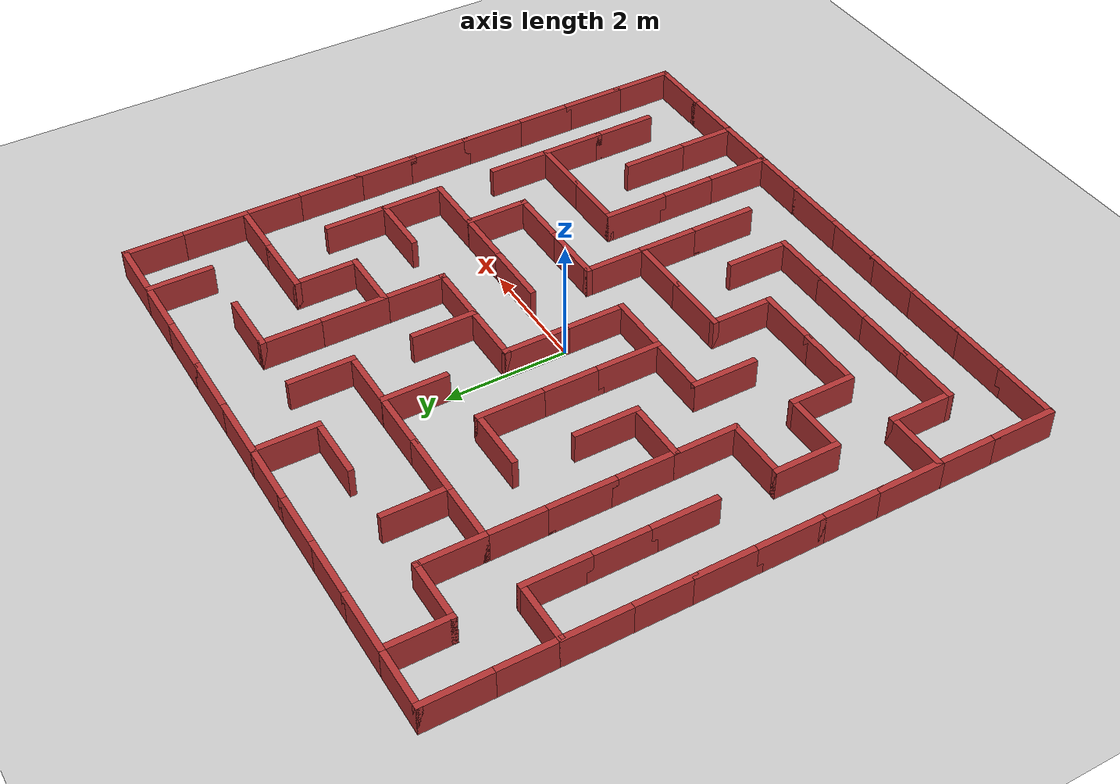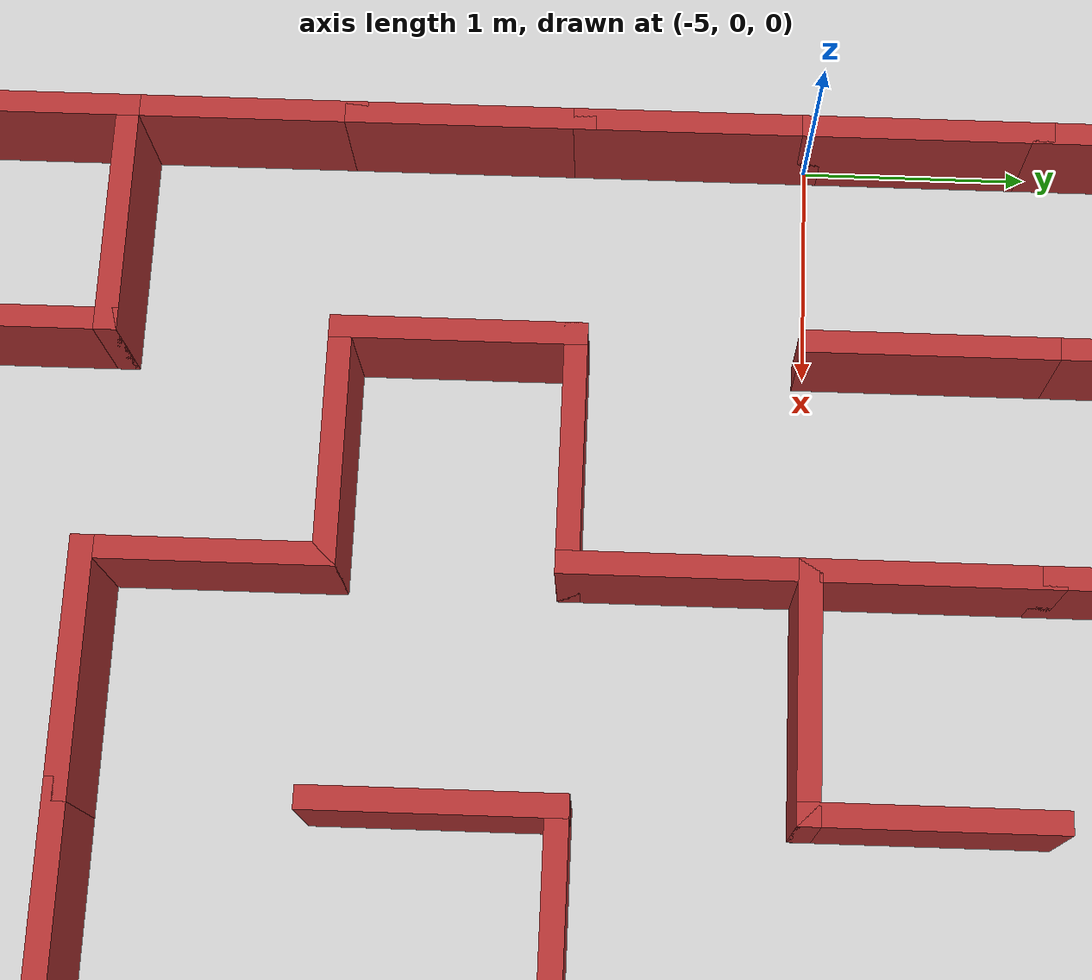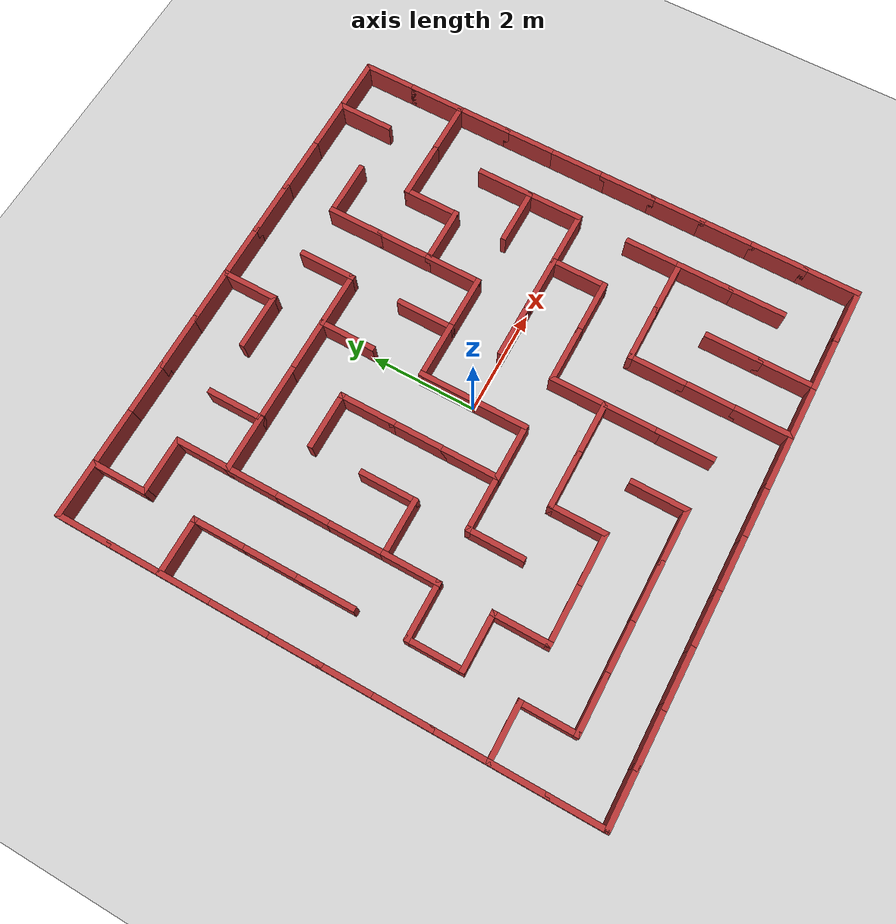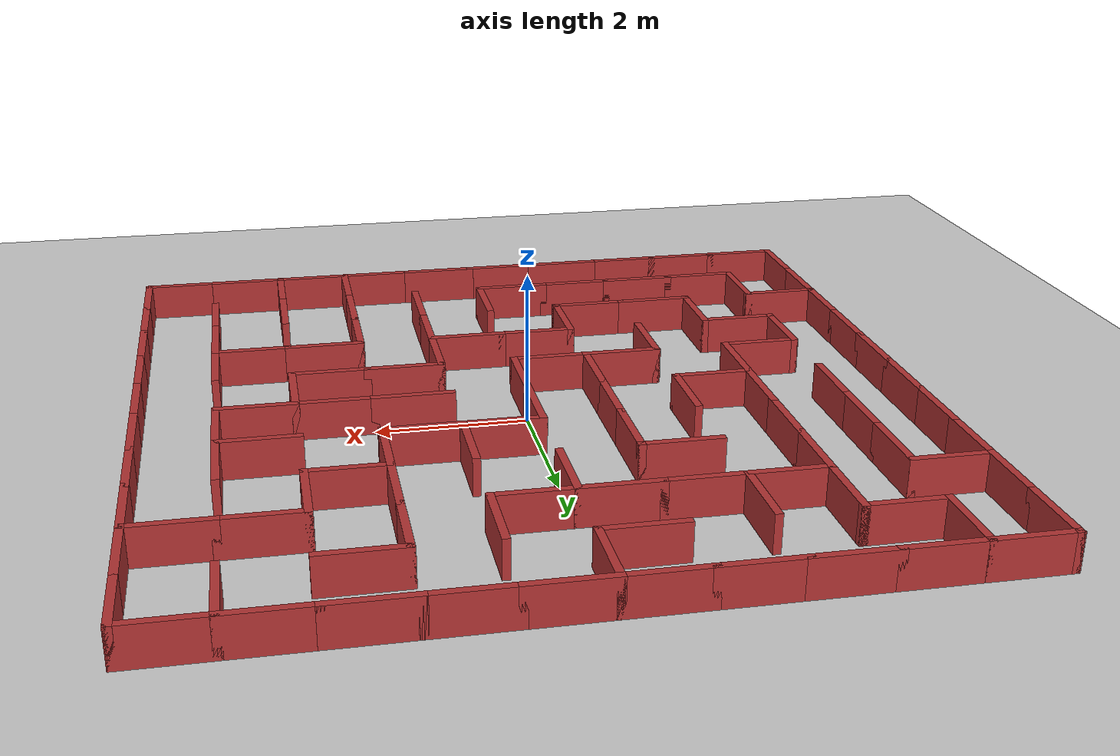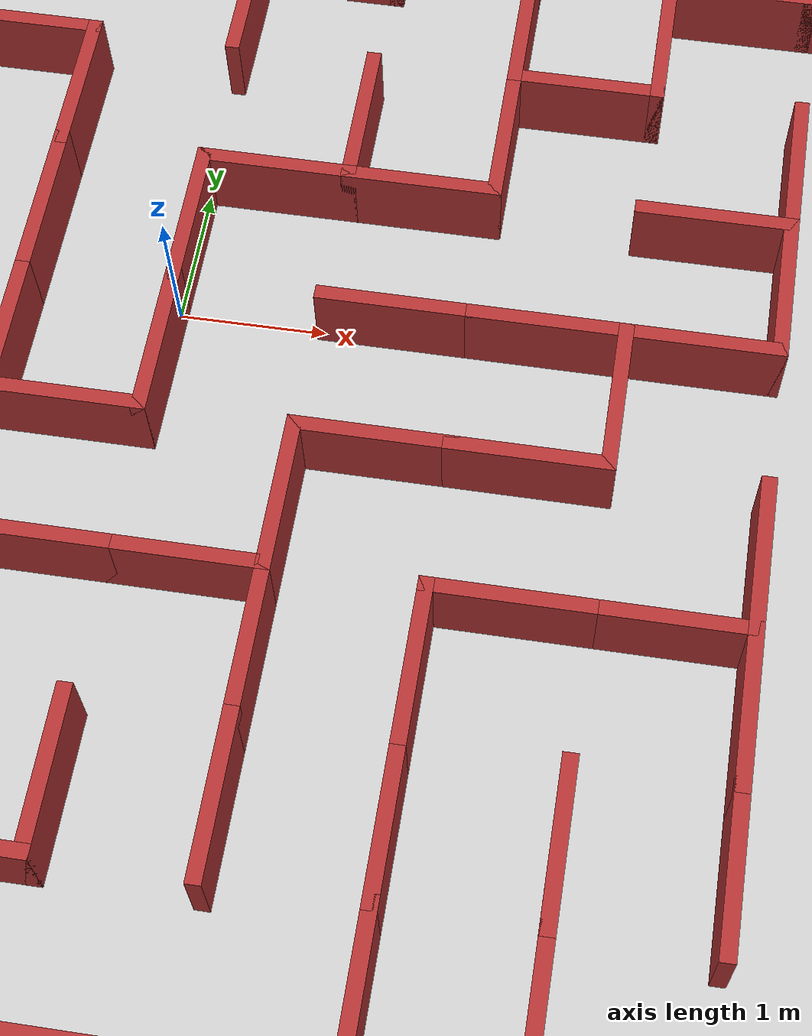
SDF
<?xml version="1.0" ?>
<sdf version="1.9">
  <world name="maze_world">
    <!-- Gazebo Harmonic system plugins -->
    <plugin filename="gz-sim-physics-system" name="gz::sim::systems::Physics"/>
    <plugin filename="gz-sim-sensors-system" name="gz::sim::systems::Sensors">
    <render_engine>ogre2</render_engine>
    </plugin>
    <plugin filename="gz-sim-scene-broadcaster-system" name="gz::sim::systems::SceneBroadcaster"/>
    <plugin filename="gz-sim-user-commands-system" name="gz::sim::systems::UserCommands"/>
    <plugin filename="gz-sim-imu-system" name="gz::sim::systems::Imu"/>

    <light name="sun" type="directional">
      <cast_shadows>1</cast_shadows>
      <pose>0 0 10 0 -0 0</pose>
      <diffuse>0.8 0.8 0.8 1</diffuse>
      <specular>0.1 0.1 0.1 1</specular>
      <direction>-0.5 0.5 -1</direction>
    </light>

    <model name="ground_plane">
      <static>1</static>
      <link name="link">
        <collision name="collision">
          <geometry><plane><normal>0 0 1</normal><size>100 100</size></plane></geometry>
        </collision>
        <visual name="visual">
          <geometry><plane><normal>0 0 1</normal><size>100 100</size></plane></geometry>
          <material><ambient>0.8 0.8 0.8 1</ambient></material>
        </visual>
      </link>
    </model>

    <model name="laberinto">
      <static>1</static>
      <link name="vwall_0">
        <pose>-5.0 4.5 0.25 0 0 0</pose>
        <collision name="vwall_0_collision">
          <geometry><box><size>0.1 1.1 0.5</size></box></geometry>
        </collision>
        <visual name="vwall_0_visual">
          <geometry><box><size>0.1 1.1 0.5</size></box></geometry>
          <material><ambient>0.7 0.2 0.2 1</ambient><diffuse>0.7 0.2 0.2 1</diffuse></material>
        </visual>
      </link>
      <link name="vwall_1">
        <pose>-4.0 4.5 0.25 0 0 0</pose>
        <collision name="vwall_1_collision">
          <geometry><box><size>0.1 1.1 0.5</size></box></geometry>
        </collision>
        <visual name="vwall_1_visual">
          <geometry><box><size>0.1 1.1 0.5</size></box></geometry>
          <material><ambient>0.7 0.2 0.2 1</ambient><diffuse>0.7 0.2 0.2 1</diffuse></material>
        </visual>
      </link>
      <link name="vwall_2">
        <pose>0.0 4.5 0.25 0 0 0</pose>
        <collision name="vwall_2_collision">
          <geometry><box><size>0.1 1.1 0.5</size></box></geometry>
        </collision>
        <visual name="vwall_2_visual">
          <geometry><box><size>0.1 1.1 0.5</size></box></geometry>
          <material><ambient>0.7 0.2 0.2 1</ambient><diffuse>0.7 0.2 0.2 1</diffuse></material>
        </visual>
      </link>
      <link name="vwall_3">
        <pose>4.0 4.5 0.25 0 0 0</pose>
        <collision name="vwall_3_collision">
          <geometry><box><size>0.1 1.1 0.5</size></box></geometry>
        </collision>
        <visual name="vwall_3_visual">
          <geometry><box><size>0.1 1.1 0.5</size></box></geometry>
          <material><ambient>0.7 0.2 0.2 1</ambient><diffuse>0.7 0.2 0.2 1</diffuse></material>
        </visual>
      </link>
      <link name="vwall_4">
        <pose>5.0 4.5 0.25 0 0 0</pose>
        <collision name="vwall_4_collision">
          <geometry><box><size>0.1 1.1 0.5</size></box></geometry>
        </collision>
        <visual name="vwall_4_visual">
          <geometry><box><size>0.1 1.1 0.5</size></box></geometry>
          <material><ambient>0.7 0.2 0.2 1</ambient><diffuse>0.7 0.2 0.2 1</diffuse></material>
        </visual>
      </link>
      <link name="vwall_5">
        <pose>-5.0 3.5 0.25 0 0 0</pose>
        <collision name="vwall_5_collision">
          <geometry><box><size>0.1 1.1 0.5</size></box></geometry>
        </collision>
        <visual name="vwall_5_visual">
          <geometry><box><size>0.1 1.1 0.5</size></box></geometry>
          <material><ambient>0.7 0.2 0.2 1</ambient><diffuse>0.7 0.2 0.2 1</diffuse></material>
        </visual>
      </link>
      <link name="vwall_6">
        <pose>-3.0 3.5 0.25 0 0 0</pose>
        <collision name="vwall_6_collision">
          <geometry><box><size>0.1 1.1 0.5</size></box></geometry>
        </collision>
        <visual name="vwall_6_visual">
          <geometry><box><size>0.1 1.1 0.5</size></box></geometry>
          <material><ambient>0.7 0.2 0.2 1</ambient><diffuse>0.7 0.2 0.2 1</diffuse></material>
        </visual>
      </link>
      <link name="vwall_7">
        <pose>-2.0 3.5 0.25 0 0 0</pose>
        <collision name="vwall_7_collision">
          <geometry><box><size>0.1 1.1 0.5</size></box></geometry>
        </collision>
        <visual name="vwall_7_visual">
          <geometry><box><size>0.1 1.1 0.5</size></box></geometry>
          <material><ambient>0.7 0.2 0.2 1</ambient><diffuse>0.7 0.2 0.2 1</diffuse></material>
        </visual>
      </link>
      <link name="vwall_8">
        <pose>1.0 3.5 0.25 0 0 0</pose>
        <collision name="vwall_8_collision">
          <geometry><box><size>0.1 1.1 0.5</size></box></geometry>
        </collision>
        <visual name="vwall_8_visual">
          <geometry><box><size>0.1 1.1 0.5</size></box></geometry>
          <material><ambient>0.7 0.2 0.2 1</ambient><diffuse>0.7 0.2 0.2 1</diffuse></material>
        </visual>
      </link>
      <link name="vwall_9">
        <pose>2.0 3.5 0.25 0 0 0</pose>
        <collision name="vwall_9_collision">
          <geometry><box><size>0.1 1.1 0.5</size></box></geometry>
        </collision>
        <visual name="vwall_9_visual">
          <geometry><box><size>0.1 1.1 0.5</size></box></geometry>
          <material><ambient>0.7 0.2 0.2 1</ambient><diffuse>0.7 0.2 0.2 1</diffuse></material>
        </visual>
      </link>
      <link name="vwall_10">
        <pose>5.0 3.5 0.25 0 0 0</pose>
        <collision name="vwall_10_collision">
          <geometry><box><size>0.1 1.1 0.5</size></box></geometry>
        </collision>
        <visual name="vwall_10_visual">
          <geometry><box><size>0.1 1.1 0.5</size></box></geometry>
          <material><ambient>0.7 0.2 0.2 1</ambient><diffuse>0.7 0.2 0.2 1</diffuse></material>
        </visual>
      </link>
      <link name="vwall_11">
        <pose>-5.0 2.5 0.25 0 0 0</pose>
        <collision name="vwall_11_collision">
          <geometry><box><size>0.1 1.1 0.5</size></box></geometry>
        </collision>
        <visual name="vwall_11_visual">
          <geometry><box><size>0.1 1.1 0.5</size></box></geometry>
          <material><ambient>0.7 0.2 0.2 1</ambient><diffuse>0.7 0.2 0.2 1</diffuse></material>
        </visual>
      </link>
      <link name="vwall_12">
        <pose>-4.0 2.5 0.25 0 0 0</pose>
        <collision name="vwall_12_collision">
          <geometry><box><size>0.1 1.1 0.5</size></box></geometry>
        </collision>
        <visual name="vwall_12_visual">
          <geometry><box><size>0.1 1.1 0.5</size></box></geometry>
          <material><ambient>0.7 0.2 0.2 1</ambient><diffuse>0.7 0.2 0.2 1</diffuse></material>
        </visual>
      </link>
      <link name="vwall_13">
        <pose>-3.0 2.5 0.25 0 0 0</pose>
        <collision name="vwall_13_collision">
          <geometry><box><size>0.1 1.1 0.5</size></box></geometry>
        </collision>
        <visual name="vwall_13_visual">
          <geometry><box><size>0.1 1.1 0.5</size></box></geometry>
          <material><ambient>0.7 0.2 0.2 1</ambient><diffuse>0.7 0.2 0.2 1</diffuse></material>
        </visual>
      </link>
      <link name="vwall_14">
        <pose>0.0 2.5 0.25 0 0 0</pose>
        <collision name="vwall_14_collision">
          <geometry><box><size>0.1 1.1 0.5</size></box></geometry>
        </collision>
        <visual name="vwall_14_visual">
          <geometry><box><size>0.1 1.1 0.5</size></box></geometry>
          <material><ambient>0.7 0.2 0.2 1</ambient><diffuse>0.7 0.2 0.2 1</diffuse></material>
        </visual>
      </link>
      <link name="vwall_15">
        <pose>2.0 2.5 0.25 0 0 0</pose>
        <collision name="vwall_15_collision">
          <geometry><box><size>0.1 1.1 0.5</size></box></geometry>
        </collision>
        <visual name="vwall_15_visual">
          <geometry><box><size>0.1 1.1 0.5</size></box></geometry>
          <material><ambient>0.7 0.2 0.2 1</ambient><diffuse>0.7 0.2 0.2 1</diffuse></material>
        </visual>
      </link>
      <link name="vwall_16">
        <pose>3.0 2.5 0.25 0 0 0</pose>
        <collision name="vwall_16_collision">
          <geometry><box><size>0.1 1.1 0.5</size></box></geometry>
        </collision>
        <visual name="vwall_16_visual">
          <geometry><box><size>0.1 1.1 0.5</size></box></geometry>
          <material><ambient>0.7 0.2 0.2 1</ambient><diffuse>0.7 0.2 0.2 1</diffuse></material>
        </visual>
      </link>
      <link name="vwall_17">
        <pose>5.0 2.5 0.25 0 0 0</pose>
        <collision name="vwall_17_collision">
          <geometry><box><size>0.1 1.1 0.5</size></box></geometry>
        </collision>
        <visual name="vwall_17_visual">
          <geometry><box><size>0.1 1.1 0.5</size></box></geometry>
          <material><ambient>0.7 0.2 0.2 1</ambient><diffuse>0.7 0.2 0.2 1</diffuse></material>
        </visual>
      </link>
      <link name="vwall_18">
        <pose>-5.0 1.5 0.25 0 0 0</pose>
        <collision name="vwall_18_collision">
          <geometry><box><size>0.1 1.1 0.5</size></box></geometry>
        </collision>
        <visual name="vwall_18_visual">
          <geometry><box><size>0.1 1.1 0.5</size></box></geometry>
          <material><ambient>0.7 0.2 0.2 1</ambient><diffuse>0.7 0.2 0.2 1</diffuse></material>
        </visual>
      </link>
      <link name="vwall_19">
        <pose>-4.0 1.5 0.25 0 0 0</pose>
        <collision name="vwall_19_collision">
          <geometry><box><size>0.1 1.1 0.5</size></box></geometry>
        </collision>
        <visual name="vwall_19_visual">
          <geometry><box><size>0.1 1.1 0.5</size></box></geometry>
          <material><ambient>0.7 0.2 0.2 1</ambient><diffuse>0.7 0.2 0.2 1</diffuse></material>
        </visual>
      </link>
      <link name="vwall_20">
        <pose>-3.0 1.5 0.25 0 0 0</pose>
        <collision name="vwall_20_collision">
          <geometry><box><size>0.1 1.1 0.5</size></box></geometry>
        </collision>
        <visual name="vwall_20_visual">
          <geometry><box><size>0.1 1.1 0.5</size></box></geometry>
          <material><ambient>0.7 0.2 0.2 1</ambient><diffuse>0.7 0.2 0.2 1</diffuse></material>
        </visual>
      </link>
      <link name="vwall_21">
        <pose>-1.0 1.5 0.25 0 0 0</pose>
        <collision name="vwall_21_collision">
          <geometry><box><size>0.1 1.1 0.5</size></box></geometry>
        </collision>
        <visual name="vwall_21_visual">
          <geometry><box><size>0.1 1.1 0.5</size></box></geometry>
          <material><ambient>0.7 0.2 0.2 1</ambient><diffuse>0.7 0.2 0.2 1</diffuse></material>
        </visual>
      </link>
      <link name="vwall_22">
        <pose>1.0 1.5 0.25 0 0 0</pose>
        <collision name="vwall_22_collision">
          <geometry><box><size>0.1 1.1 0.5</size></box></geometry>
        </collision>
        <visual name="vwall_22_visual">
          <geometry><box><size>0.1 1.1 0.5</size></box></geometry>
          <material><ambient>0.7 0.2 0.2 1</ambient><diffuse>0.7 0.2 0.2 1</diffuse></material>
        </visual>
      </link>
      <link name="vwall_23">
        <pose>2.0 1.5 0.25 0 0 0</pose>
        <collision name="vwall_23_collision">
          <geometry><box><size>0.1 1.1 0.5</size></box></geometry>
        </collision>
        <visual name="vwall_23_visual">
          <geometry><box><size>0.1 1.1 0.5</size></box></geometry>
          <material><ambient>0.7 0.2 0.2 1</ambient><diffuse>0.7 0.2 0.2 1</diffuse></material>
        </visual>
      </link>
      <link name="vwall_24">
        <pose>4.0 1.5 0.25 0 0 0</pose>
        <collision name="vwall_24_collision">
          <geometry><box><size>0.1 1.1 0.5</size></box></geometry>
        </collision>
        <visual name="vwall_24_visual">
          <geometry><box><size>0.1 1.1 0.5</size></box></geometry>
          <material><ambient>0.7 0.2 0.2 1</ambient><diffuse>0.7 0.2 0.2 1</diffuse></material>
        </visual>
      </link>
      <link name="vwall_25">
        <pose>5.0 1.5 0.25 0 0 0</pose>
        <collision name="vwall_25_collision">
          <geometry><box><size>0.1 1.1 0.5</size></box></geometry>
        </collision>
        <visual name="vwall_25_visual">
          <geometry><box><size>0.1 1.1 0.5</size></box></geometry>
          <material><ambient>0.7 0.2 0.2 1</ambient><diffuse>0.7 0.2 0.2 1</diffuse></material>
        </visual>
      </link>
      <link name="vwall_26">
        <pose>-5.0 0.5 0.25 0 0 0</pose>
        <collision name="vwall_26_collision">
          <geometry><box><size>0.1 1.1 0.5</size></box></geometry>
        </collision>
        <visual name="vwall_26_visual">
          <geometry><box><size>0.1 1.1 0.5</size></box></geometry>
          <material><ambient>0.7 0.2 0.2 1</ambient><diffuse>0.7 0.2 0.2 1</diffuse></material>
        </visual>
      </link>
      <link name="vwall_27">
        <pose>-4.0 0.5 0.25 0 0 0</pose>
        <collision name="vwall_27_collision">
          <geometry><box><size>0.1 1.1 0.5</size></box></geometry>
        </collision>
        <visual name="vwall_27_visual">
          <geometry><box><size>0.1 1.1 0.5</size></box></geometry>
          <material><ambient>0.7 0.2 0.2 1</ambient><diffuse>0.7 0.2 0.2 1</diffuse></material>
        </visual>
      </link>
      <link name="vwall_28">
        <pose>-3.0 0.5 0.25 0 0 0</pose>
        <collision name="vwall_28_collision">
          <geometry><box><size>0.1 1.1 0.5</size></box></geometry>
        </collision>
        <visual name="vwall_28_visual">
          <geometry><box><size>0.1 1.1 0.5</size></box></geometry>
          <material><ambient>0.7 0.2 0.2 1</ambient><diffuse>0.7 0.2 0.2 1</diffuse></material>
        </visual>
      </link>
      <link name="vwall_29">
        <pose>-2.0 0.5 0.25 0 0 0</pose>
        <collision name="vwall_29_collision">
          <geometry><box><size>0.1 1.1 0.5</size></box></geometry>
        </collision>
        <visual name="vwall_29_visual">
          <geometry><box><size>0.1 1.1 0.5</size></box></geometry>
          <material><ambient>0.7 0.2 0.2 1</ambient><diffuse>0.7 0.2 0.2 1</diffuse></material>
        </visual>
      </link>
      <link name="vwall_30">
        <pose>-1.0 0.5 0.25 0 0 0</pose>
        <collision name="vwall_30_collision">
          <geometry><box><size>0.1 1.1 0.5</size></box></geometry>
        </collision>
        <visual name="vwall_30_visual">
          <geometry><box><size>0.1 1.1 0.5</size></box></geometry>
          <material><ambient>0.7 0.2 0.2 1</ambient><diffuse>0.7 0.2 0.2 1</diffuse></material>
        </visual>
      </link>
      <link name="vwall_31">
        <pose>0.0 0.5 0.25 0 0 0</pose>
        <collision name="vwall_31_collision">
          <geometry><box><size>0.1 1.1 0.5</size></box></geometry>
        </collision>
        <visual name="vwall_31_visual">
          <geometry><box><size>0.1 1.1 0.5</size></box></geometry>
          <material><ambient>0.7 0.2 0.2 1</ambient><diffuse>0.7 0.2 0.2 1</diffuse></material>
        </visual>
      </link>
      <link name="vwall_32">
        <pose>4.0 0.5 0.25 0 0 0</pose>
        <collision name="vwall_32_collision">
          <geometry><box><size>0.1 1.1 0.5</size></box></geometry>
        </collision>
        <visual name="vwall_32_visual">
          <geometry><box><size>0.1 1.1 0.5</size></box></geometry>
          <material><ambient>0.7 0.2 0.2 1</ambient><diffuse>0.7 0.2 0.2 1</diffuse></material>
        </visual>
      </link>
      <link name="vwall_33">
        <pose>5.0 0.5 0.25 0 0 0</pose>
        <collision name="vwall_33_collision">
          <geometry><box><size>0.1 1.1 0.5</size></box></geometry>
        </collision>
        <visual name="vwall_33_visual">
          <geometry><box><size>0.1 1.1 0.5</size></box></geometry>
          <material><ambient>0.7 0.2 0.2 1</ambient><diffuse>0.7 0.2 0.2 1</diffuse></material>
        </visual>
      </link>
      <link name="vwall_34">
        <pose>-5.0 -0.5 0.25 0 0 0</pose>
        <collision name="vwall_34_collision">
          <geometry><box><size>0.1 1.1 0.5</size></box></geometry>
        </collision>
        <visual name="vwall_34_visual">
          <geometry><box><size>0.1 1.1 0.5</size></box></geometry>
          <material><ambient>0.7 0.2 0.2 1</ambient><diffuse>0.7 0.2 0.2 1</diffuse></material>
        </visual>
      </link>
      <link name="vwall_35">
        <pose>-3.0 -0.5 0.25 0 0 0</pose>
        <collision name="vwall_35_collision">
          <geometry><box><size>0.1 1.1 0.5</size></box></geometry>
        </collision>
        <visual name="vwall_35_visual">
          <geometry><box><size>0.1 1.1 0.5</size></box></geometry>
          <material><ambient>0.7 0.2 0.2 1</ambient><diffuse>0.7 0.2 0.2 1</diffuse></material>
        </visual>
      </link>
      <link name="vwall_36">
        <pose>-1.0 -0.5 0.25 0 0 0</pose>
        <collision name="vwall_36_collision">
          <geometry><box><size>0.1 1.1 0.5</size></box></geometry>
        </collision>
        <visual name="vwall_36_visual">
          <geometry><box><size>0.1 1.1 0.5</size></box></geometry>
          <material><ambient>0.7 0.2 0.2 1</ambient><diffuse>0.7 0.2 0.2 1</diffuse></material>
        </visual>
      </link>
      <link name="vwall_37">
        <pose>0.0 -0.5 0.25 0 0 0</pose>
        <collision name="vwall_37_collision">
          <geometry><box><size>0.1 1.1 0.5</size></box></geometry>
        </collision>
        <visual name="vwall_37_visual">
          <geometry><box><size>0.1 1.1 0.5</size></box></geometry>
          <material><ambient>0.7 0.2 0.2 1</ambient><diffuse>0.7 0.2 0.2 1</diffuse></material>
        </visual>
      </link>
      <link name="vwall_38">
        <pose>3.0 -0.5 0.25 0 0 0</pose>
        <collision name="vwall_38_collision">
          <geometry><box><size>0.1 1.1 0.5</size></box></geometry>
        </collision>
        <visual name="vwall_38_visual">
          <geometry><box><size>0.1 1.1 0.5</size></box></geometry>
          <material><ambient>0.7 0.2 0.2 1</ambient><diffuse>0.7 0.2 0.2 1</diffuse></material>
        </visual>
      </link>
      <link name="vwall_39">
        <pose>5.0 -0.5 0.25 0 0 0</pose>
        <collision name="vwall_39_collision">
          <geometry><box><size>0.1 1.1 0.5</size></box></geometry>
        </collision>
        <visual name="vwall_39_visual">
          <geometry><box><size>0.1 1.1 0.5</size></box></geometry>
          <material><ambient>0.7 0.2 0.2 1</ambient><diffuse>0.7 0.2 0.2 1</diffuse></material>
        </visual>
      </link>
      <link name="vwall_40">
        <pose>-5.0 -1.5 0.25 0 0 0</pose>
        <collision name="vwall_40_collision">
          <geometry><box><size>0.1 1.1 0.5</size></box></geometry>
        </collision>
        <visual name="vwall_40_visual">
          <geometry><box><size>0.1 1.1 0.5</size></box></geometry>
          <material><ambient>0.7 0.2 0.2 1</ambient><diffuse>0.7 0.2 0.2 1</diffuse></material>
        </visual>
      </link>
      <link name="vwall_41">
        <pose>-4.0 -1.5 0.25 0 0 0</pose>
        <collision name="vwall_41_collision">
          <geometry><box><size>0.1 1.1 0.5</size></box></geometry>
        </collision>
        <visual name="vwall_41_visual">
          <geometry><box><size>0.1 1.1 0.5</size></box></geometry>
          <material><ambient>0.7 0.2 0.2 1</ambient><diffuse>0.7 0.2 0.2 1</diffuse></material>
        </visual>
      </link>
      <link name="vwall_42">
        <pose>-2.0 -1.5 0.25 0 0 0</pose>
        <collision name="vwall_42_collision">
          <geometry><box><size>0.1 1.1 0.5</size></box></geometry>
        </collision>
        <visual name="vwall_42_visual">
          <geometry><box><size>0.1 1.1 0.5</size></box></geometry>
          <material><ambient>0.7 0.2 0.2 1</ambient><diffuse>0.7 0.2 0.2 1</diffuse></material>
        </visual>
      </link>
      <link name="vwall_43">
        <pose>1.0 -1.5 0.25 0 0 0</pose>
        <collision name="vwall_43_collision">
          <geometry><box><size>0.1 1.1 0.5</size></box></geometry>
        </collision>
        <visual name="vwall_43_visual">
          <geometry><box><size>0.1 1.1 0.5</size></box></geometry>
          <material><ambient>0.7 0.2 0.2 1</ambient><diffuse>0.7 0.2 0.2 1</diffuse></material>
        </visual>
      </link>
      <link name="vwall_44">
        <pose>4.0 -1.5 0.25 0 0 0</pose>
        <collision name="vwall_44_collision">
          <geometry><box><size>0.1 1.1 0.5</size></box></geometry>
        </collision>
        <visual name="vwall_44_visual">
          <geometry><box><size>0.1 1.1 0.5</size></box></geometry>
          <material><ambient>0.7 0.2 0.2 1</ambient><diffuse>0.7 0.2 0.2 1</diffuse></material>
        </visual>
      </link>
      <link name="vwall_45">
        <pose>5.0 -1.5 0.25 0 0 0</pose>
        <collision name="vwall_45_collision">
          <geometry><box><size>0.1 1.1 0.5</size></box></geometry>
        </collision>
        <visual name="vwall_45_visual">
          <geometry><box><size>0.1 1.1 0.5</size></box></geometry>
          <material><ambient>0.7 0.2 0.2 1</ambient><diffuse>0.7 0.2 0.2 1</diffuse></material>
        </visual>
      </link>
      <link name="vwall_46">
        <pose>-5.0 -2.5 0.25 0 0 0</pose>
        <collision name="vwall_46_collision">
          <geometry><box><size>0.1 1.1 0.5</size></box></geometry>
        </collision>
        <visual name="vwall_46_visual">
          <geometry><box><size>0.1 1.1 0.5</size></box></geometry>
          <material><ambient>0.7 0.2 0.2 1</ambient><diffuse>0.7 0.2 0.2 1</diffuse></material>
        </visual>
      </link>
      <link name="vwall_47">
        <pose>-3.0 -2.5 0.25 0 0 0</pose>
        <collision name="vwall_47_collision">
          <geometry><box><size>0.1 1.1 0.5</size></box></geometry>
        </collision>
        <visual name="vwall_47_visual">
          <geometry><box><size>0.1 1.1 0.5</size></box></geometry>
          <material><ambient>0.7 0.2 0.2 1</ambient><diffuse>0.7 0.2 0.2 1</diffuse></material>
        </visual>
      </link>
      <link name="vwall_48">
        <pose>-1.0 -2.5 0.25 0 0 0</pose>
        <collision name="vwall_48_collision">
          <geometry><box><size>0.1 1.1 0.5</size></box></geometry>
        </collision>
        <visual name="vwall_48_visual">
          <geometry><box><size>0.1 1.1 0.5</size></box></geometry>
          <material><ambient>0.7 0.2 0.2 1</ambient><diffuse>0.7 0.2 0.2 1</diffuse></material>
        </visual>
      </link>
      <link name="vwall_49">
        <pose>1.0 -2.5 0.25 0 0 0</pose>
        <collision name="vwall_49_collision">
          <geometry><box><size>0.1 1.1 0.5</size></box></geometry>
        </collision>
        <visual name="vwall_49_visual">
          <geometry><box><size>0.1 1.1 0.5</size></box></geometry>
          <material><ambient>0.7 0.2 0.2 1</ambient><diffuse>0.7 0.2 0.2 1</diffuse></material>
        </visual>
      </link>
      <link name="vwall_50">
        <pose>2.0 -2.5 0.25 0 0 0</pose>
        <collision name="vwall_50_collision">
          <geometry><box><size>0.1 1.1 0.5</size></box></geometry>
        </collision>
        <visual name="vwall_50_visual">
          <geometry><box><size>0.1 1.1 0.5</size></box></geometry>
          <material><ambient>0.7 0.2 0.2 1</ambient><diffuse>0.7 0.2 0.2 1</diffuse></material>
        </visual>
      </link>
      <link name="vwall_51">
        <pose>4.0 -2.5 0.25 0 0 0</pose>
        <collision name="vwall_51_collision">
          <geometry><box><size>0.1 1.1 0.5</size></box></geometry>
        </collision>
        <visual name="vwall_51_visual">
          <geometry><box><size>0.1 1.1 0.5</size></box></geometry>
          <material><ambient>0.7 0.2 0.2 1</ambient><diffuse>0.7 0.2 0.2 1</diffuse></material>
        </visual>
      </link>
      <link name="vwall_52">
        <pose>5.0 -2.5 0.25 0 0 0</pose>
        <collision name="vwall_52_collision">
          <geometry><box><size>0.1 1.1 0.5</size></box></geometry>
        </collision>
        <visual name="vwall_52_visual">
          <geometry><box><size>0.1 1.1 0.5</size></box></geometry>
          <material><ambient>0.7 0.2 0.2 1</ambient><diffuse>0.7 0.2 0.2 1</diffuse></material>
        </visual>
      </link>
      <link name="vwall_53">
        <pose>-5.0 -3.5 0.25 0 0 0</pose>
        <collision name="vwall_53_collision">
          <geometry><box><size>0.1 1.1 0.5</size></box></geometry>
        </collision>
        <visual name="vwall_53_visual">
          <geometry><box><size>0.1 1.1 0.5</size></box></geometry>
          <material><ambient>0.7 0.2 0.2 1</ambient><diffuse>0.7 0.2 0.2 1</diffuse></material>
        </visual>
      </link>
      <link name="vwall_54">
        <pose>-4.0 -3.5 0.25 0 0 0</pose>
        <collision name="vwall_54_collision">
          <geometry><box><size>0.1 1.1 0.5</size></box></geometry>
        </collision>
        <visual name="vwall_54_visual">
          <geometry><box><size>0.1 1.1 0.5</size></box></geometry>
          <material><ambient>0.7 0.2 0.2 1</ambient><diffuse>0.7 0.2 0.2 1</diffuse></material>
        </visual>
      </link>
      <link name="vwall_55">
        <pose>0.0 -3.5 0.25 0 0 0</pose>
        <collision name="vwall_55_collision">
          <geometry><box><size>0.1 1.1 0.5</size></box></geometry>
        </collision>
        <visual name="vwall_55_visual">
          <geometry><box><size>0.1 1.1 0.5</size></box></geometry>
          <material><ambient>0.7 0.2 0.2 1</ambient><diffuse>0.7 0.2 0.2 1</diffuse></material>
        </visual>
      </link>
      <link name="vwall_56">
        <pose>1.0 -3.5 0.25 0 0 0</pose>
        <collision name="vwall_56_collision">
          <geometry><box><size>0.1 1.1 0.5</size></box></geometry>
        </collision>
        <visual name="vwall_56_visual">
          <geometry><box><size>0.1 1.1 0.5</size></box></geometry>
          <material><ambient>0.7 0.2 0.2 1</ambient><diffuse>0.7 0.2 0.2 1</diffuse></material>
        </visual>
      </link>
      <link name="vwall_57">
        <pose>2.0 -3.5 0.25 0 0 0</pose>
        <collision name="vwall_57_collision">
          <geometry><box><size>0.1 1.1 0.5</size></box></geometry>
        </collision>
        <visual name="vwall_57_visual">
          <geometry><box><size>0.1 1.1 0.5</size></box></geometry>
          <material><ambient>0.7 0.2 0.2 1</ambient><diffuse>0.7 0.2 0.2 1</diffuse></material>
        </visual>
      </link>
      <link name="vwall_58">
        <pose>3.0 -3.5 0.25 0 0 0</pose>
        <collision name="vwall_58_collision">
          <geometry><box><size>0.1 1.1 0.5</size></box></geometry>
        </collision>
        <visual name="vwall_58_visual">
          <geometry><box><size>0.1 1.1 0.5</size></box></geometry>
          <material><ambient>0.7 0.2 0.2 1</ambient><diffuse>0.7 0.2 0.2 1</diffuse></material>
        </visual>
      </link>
      <link name="vwall_59">
        <pose>4.0 -3.5 0.25 0 0 0</pose>
        <collision name="vwall_59_collision">
          <geometry><box><size>0.1 1.1 0.5</size></box></geometry>
        </collision>
        <visual name="vwall_59_visual">
          <geometry><box><size>0.1 1.1 0.5</size></box></geometry>
          <material><ambient>0.7 0.2 0.2 1</ambient><diffuse>0.7 0.2 0.2 1</diffuse></material>
        </visual>
      </link>
      <link name="vwall_60">
        <pose>5.0 -3.5 0.25 0 0 0</pose>
        <collision name="vwall_60_collision">
          <geometry><box><size>0.1 1.1 0.5</size></box></geometry>
        </collision>
        <visual name="vwall_60_visual">
          <geometry><box><size>0.1 1.1 0.5</size></box></geometry>
          <material><ambient>0.7 0.2 0.2 1</ambient><diffuse>0.7 0.2 0.2 1</diffuse></material>
        </visual>
      </link>
      <link name="vwall_61">
        <pose>-5.0 -4.5 0.25 0 0 0</pose>
        <collision name="vwall_61_collision">
          <geometry><box><size>0.1 1.1 0.5</size></box></geometry>
        </collision>
        <visual name="vwall_61_visual">
          <geometry><box><size>0.1 1.1 0.5</size></box></geometry>
          <material><ambient>0.7 0.2 0.2 1</ambient><diffuse>0.7 0.2 0.2 1</diffuse></material>
        </visual>
      </link>
      <link name="vwall_62">
        <pose>2.0 -4.5 0.25 0 0 0</pose>
        <collision name="vwall_62_collision">
          <geometry><box><size>0.1 1.1 0.5</size></box></geometry>
        </collision>
        <visual name="vwall_62_visual">
          <geometry><box><size>0.1 1.1 0.5</size></box></geometry>
          <material><ambient>0.7 0.2 0.2 1</ambient><diffuse>0.7 0.2 0.2 1</diffuse></material>
        </visual>
      </link>
      <link name="vwall_63">
        <pose>3.0 -4.5 0.25 0 0 0</pose>
        <collision name="vwall_63_collision">
          <geometry><box><size>0.1 1.1 0.5</size></box></geometry>
        </collision>
        <visual name="vwall_63_visual">
          <geometry><box><size>0.1 1.1 0.5</size></box></geometry>
          <material><ambient>0.7 0.2 0.2 1</ambient><diffuse>0.7 0.2 0.2 1</diffuse></material>
        </visual>
      </link>
      <link name="vwall_64">
        <pose>5.0 -4.5 0.25 0 0 0</pose>
        <collision name="vwall_64_collision">
          <geometry><box><size>0.1 1.1 0.5</size></box></geometry>
        </collision>
        <visual name="vwall_64_visual">
          <geometry><box><size>0.1 1.1 0.5</size></box></geometry>
          <material><ambient>0.7 0.2 0.2 1</ambient><diffuse>0.7 0.2 0.2 1</diffuse></material>
        </visual>
      </link>
      <link name="hwall_65">
        <pose>-4.5 5.0 0.25 0 0 0</pose>
        <collision name="hwall_65_collision">
          <geometry><box><size>1.1 0.1 0.5</size></box></geometry>
        </collision>
        <visual name="hwall_65_visual">
          <geometry><box><size>1.1 0.1 0.5</size></box></geometry>
          <material><ambient>0.7 0.2 0.2 1</ambient><diffuse>0.7 0.2 0.2 1</diffuse></material>
        </visual>
      </link>
      <link name="hwall_66">
        <pose>-3.5 5.0 0.25 0 0 0</pose>
        <collision name="hwall_66_collision">
          <geometry><box><size>1.1 0.1 0.5</size></box></geometry>
        </collision>
        <visual name="hwall_66_visual">
          <geometry><box><size>1.1 0.1 0.5</size></box></geometry>
          <material><ambient>0.7 0.2 0.2 1</ambient><diffuse>0.7 0.2 0.2 1</diffuse></material>
        </visual>
      </link>
      <link name="hwall_67">
        <pose>-2.5 5.0 0.25 0 0 0</pose>
        <collision name="hwall_67_collision">
          <geometry><box><size>1.1 0.1 0.5</size></box></geometry>
        </collision>
        <visual name="hwall_67_visual">
          <geometry><box><size>1.1 0.1 0.5</size></box></geometry>
          <material><ambient>0.7 0.2 0.2 1</ambient><diffuse>0.7 0.2 0.2 1</diffuse></material>
        </visual>
      </link>
      <link name="hwall_68">
        <pose>-1.5 5.0 0.25 0 0 0</pose>
        <collision name="hwall_68_collision">
          <geometry><box><size>1.1 0.1 0.5</size></box></geometry>
        </collision>
        <visual name="hwall_68_visual">
          <geometry><box><size>1.1 0.1 0.5</size></box></geometry>
          <material><ambient>0.7 0.2 0.2 1</ambient><diffuse>0.7 0.2 0.2 1</diffuse></material>
        </visual>
      </link>
      <link name="hwall_69">
        <pose>-0.5 5.0 0.25 0 0 0</pose>
        <collision name="hwall_69_collision">
          <geometry><box><size>1.1 0.1 0.5</size></box></geometry>
        </collision>
        <visual name="hwall_69_visual">
          <geometry><box><size>1.1 0.1 0.5</size></box></geometry>
          <material><ambient>0.7 0.2 0.2 1</ambient><diffuse>0.7 0.2 0.2 1</diffuse></material>
        </visual>
      </link>
      <link name="hwall_70">
        <pose>0.5 5.0 0.25 0 0 0</pose>
        <collision name="hwall_70_collision">
          <geometry><box><size>1.1 0.1 0.5</size></box></geometry>
        </collision>
        <visual name="hwall_70_visual">
          <geometry><box><size>1.1 0.1 0.5</size></box></geometry>
          <material><ambient>0.7 0.2 0.2 1</ambient><diffuse>0.7 0.2 0.2 1</diffuse></material>
        </visual>
      </link>
      <link name="hwall_71">
        <pose>1.5 5.0 0.25 0 0 0</pose>
        <collision name="hwall_71_collision">
          <geometry><box><size>1.1 0.1 0.5</size></box></geometry>
        </collision>
        <visual name="hwall_71_visual">
          <geometry><box><size>1.1 0.1 0.5</size></box></geometry>
          <material><ambient>0.7 0.2 0.2 1</ambient><diffuse>0.7 0.2 0.2 1</diffuse></material>
        </visual>
      </link>
      <link name="hwall_72">
        <pose>2.5 5.0 0.25 0 0 0</pose>
        <collision name="hwall_72_collision">
          <geometry><box><size>1.1 0.1 0.5</size></box></geometry>
        </collision>
        <visual name="hwall_72_visual">
          <geometry><box><size>1.1 0.1 0.5</size></box></geometry>
          <material><ambient>0.7 0.2 0.2 1</ambient><diffuse>0.7 0.2 0.2 1</diffuse></material>
        </visual>
      </link>
      <link name="hwall_73">
        <pose>3.5 5.0 0.25 0 0 0</pose>
        <collision name="hwall_73_collision">
          <geometry><box><size>1.1 0.1 0.5</size></box></geometry>
        </collision>
        <visual name="hwall_73_visual">
          <geometry><box><size>1.1 0.1 0.5</size></box></geometry>
          <material><ambient>0.7 0.2 0.2 1</ambient><diffuse>0.7 0.2 0.2 1</diffuse></material>
        </visual>
      </link>
      <link name="hwall_74">
        <pose>4.5 5.0 0.25 0 0 0</pose>
        <collision name="hwall_74_collision">
          <geometry><box><size>1.1 0.1 0.5</size></box></geometry>
        </collision>
        <visual name="hwall_74_visual">
          <geometry><box><size>1.1 0.1 0.5</size></box></geometry>
          <material><ambient>0.7 0.2 0.2 1</ambient><diffuse>0.7 0.2 0.2 1</diffuse></material>
        </visual>
      </link>
      <link name="hwall_75">
        <pose>-3.5 4.0 0.25 0 0 0</pose>
        <collision name="hwall_75_collision">
          <geometry><box><size>1.1 0.1 0.5</size></box></geometry>
        </collision>
        <visual name="hwall_75_visual">
          <geometry><box><size>1.1 0.1 0.5</size></box></geometry>
          <material><ambient>0.7 0.2 0.2 1</ambient><diffuse>0.7 0.2 0.2 1</diffuse></material>
        </visual>
      </link>
      <link name="hwall_76">
        <pose>-0.5 4.0 0.25 0 0 0</pose>
        <collision name="hwall_76_collision">
          <geometry><box><size>1.1 0.1 0.5</size></box></geometry>
        </collision>
        <visual name="hwall_76_visual">
          <geometry><box><size>1.1 0.1 0.5</size></box></geometry>
          <material><ambient>0.7 0.2 0.2 1</ambient><diffuse>0.7 0.2 0.2 1</diffuse></material>
        </visual>
      </link>
      <link name="hwall_77">
        <pose>2.5 4.0 0.25 0 0 0</pose>
        <collision name="hwall_77_collision">
          <geometry><box><size>1.1 0.1 0.5</size></box></geometry>
        </collision>
        <visual name="hwall_77_visual">
          <geometry><box><size>1.1 0.1 0.5</size></box></geometry>
          <material><ambient>0.7 0.2 0.2 1</ambient><diffuse>0.7 0.2 0.2 1</diffuse></material>
        </visual>
      </link>
      <link name="hwall_78">
        <pose>-4.5 3.0 0.25 0 0 0</pose>
        <collision name="hwall_78_collision">
          <geometry><box><size>1.1 0.1 0.5</size></box></geometry>
        </collision>
        <visual name="hwall_78_visual">
          <geometry><box><size>1.1 0.1 0.5</size></box></geometry>
          <material><ambient>0.7 0.2 0.2 1</ambient><diffuse>0.7 0.2 0.2 1</diffuse></material>
        </visual>
      </link>
      <link name="hwall_79">
        <pose>-2.5 3.0 0.25 0 0 0</pose>
        <collision name="hwall_79_collision">
          <geometry><box><size>1.1 0.1 0.5</size></box></geometry>
        </collision>
        <visual name="hwall_79_visual">
          <geometry><box><size>1.1 0.1 0.5</size></box></geometry>
          <material><ambient>0.7 0.2 0.2 1</ambient><diffuse>0.7 0.2 0.2 1</diffuse></material>
        </visual>
      </link>
      <link name="hwall_80">
        <pose>-1.5 3.0 0.25 0 0 0</pose>
        <collision name="hwall_80_collision">
          <geometry><box><size>1.1 0.1 0.5</size></box></geometry>
        </collision>
        <visual name="hwall_80_visual">
          <geometry><box><size>1.1 0.1 0.5</size></box></geometry>
          <material><ambient>0.7 0.2 0.2 1</ambient><diffuse>0.7 0.2 0.2 1</diffuse></material>
        </visual>
      </link>
      <link name="hwall_81">
        <pose>-0.5 3.0 0.25 0 0 0</pose>
        <collision name="hwall_81_collision">
          <geometry><box><size>1.1 0.1 0.5</size></box></geometry>
        </collision>
        <visual name="hwall_81_visual">
          <geometry><box><size>1.1 0.1 0.5</size></box></geometry>
          <material><ambient>0.7 0.2 0.2 1</ambient><diffuse>0.7 0.2 0.2 1</diffuse></material>
        </visual>
      </link>
      <link name="hwall_82">
        <pose>0.5 3.0 0.25 0 0 0</pose>
        <collision name="hwall_82_collision">
          <geometry><box><size>1.1 0.1 0.5</size></box></geometry>
        </collision>
        <visual name="hwall_82_visual">
          <geometry><box><size>1.1 0.1 0.5</size></box></geometry>
          <material><ambient>0.7 0.2 0.2 1</ambient><diffuse>0.7 0.2 0.2 1</diffuse></material>
        </visual>
      </link>
      <link name="hwall_83">
        <pose>3.5 3.0 0.25 0 0 0</pose>
        <collision name="hwall_83_collision">
          <geometry><box><size>1.1 0.1 0.5</size></box></geometry>
        </collision>
        <visual name="hwall_83_visual">
          <geometry><box><size>1.1 0.1 0.5</size></box></geometry>
          <material><ambient>0.7 0.2 0.2 1</ambient><diffuse>0.7 0.2 0.2 1</diffuse></material>
        </visual>
      </link>
      <link name="hwall_84">
        <pose>4.5 3.0 0.25 0 0 0</pose>
        <collision name="hwall_84_collision">
          <geometry><box><size>1.1 0.1 0.5</size></box></geometry>
        </collision>
        <visual name="hwall_84_visual">
          <geometry><box><size>1.1 0.1 0.5</size></box></geometry>
          <material><ambient>0.7 0.2 0.2 1</ambient><diffuse>0.7 0.2 0.2 1</diffuse></material>
        </visual>
      </link>
      <link name="hwall_85">
        <pose>-1.5 2.0 0.25 0 0 0</pose>
        <collision name="hwall_85_collision">
          <geometry><box><size>1.1 0.1 0.5</size></box></geometry>
        </collision>
        <visual name="hwall_85_visual">
          <geometry><box><size>1.1 0.1 0.5</size></box></geometry>
          <material><ambient>0.7 0.2 0.2 1</ambient><diffuse>0.7 0.2 0.2 1</diffuse></material>
        </visual>
      </link>
      <link name="hwall_86">
        <pose>2.5 2.0 0.25 0 0 0</pose>
        <collision name="hwall_86_collision">
          <geometry><box><size>1.1 0.1 0.5</size></box></geometry>
        </collision>
        <visual name="hwall_86_visual">
          <geometry><box><size>1.1 0.1 0.5</size></box></geometry>
          <material><ambient>0.7 0.2 0.2 1</ambient><diffuse>0.7 0.2 0.2 1</diffuse></material>
        </visual>
      </link>
      <link name="hwall_87">
        <pose>0.5 1.0 0.25 0 0 0</pose>
        <collision name="hwall_87_collision">
          <geometry><box><size>1.1 0.1 0.5</size></box></geometry>
        </collision>
        <visual name="hwall_87_visual">
          <geometry><box><size>1.1 0.1 0.5</size></box></geometry>
          <material><ambient>0.7 0.2 0.2 1</ambient><diffuse>0.7 0.2 0.2 1</diffuse></material>
        </visual>
      </link>
      <link name="hwall_88">
        <pose>1.5 1.0 0.25 0 0 0</pose>
        <collision name="hwall_88_collision">
          <geometry><box><size>1.1 0.1 0.5</size></box></geometry>
        </collision>
        <visual name="hwall_88_visual">
          <geometry><box><size>1.1 0.1 0.5</size></box></geometry>
          <material><ambient>0.7 0.2 0.2 1</ambient><diffuse>0.7 0.2 0.2 1</diffuse></material>
        </visual>
      </link>
      <link name="hwall_89">
        <pose>3.5 1.0 0.25 0 0 0</pose>
        <collision name="hwall_89_collision">
          <geometry><box><size>1.1 0.1 0.5</size></box></geometry>
        </collision>
        <visual name="hwall_89_visual">
          <geometry><box><size>1.1 0.1 0.5</size></box></geometry>
          <material><ambient>0.7 0.2 0.2 1</ambient><diffuse>0.7 0.2 0.2 1</diffuse></material>
        </visual>
      </link>
      <link name="hwall_90">
        <pose>-2.5 0.0 0.25 0 0 0</pose>
        <collision name="hwall_90_collision">
          <geometry><box><size>1.1 0.1 0.5</size></box></geometry>
        </collision>
        <visual name="hwall_90_visual">
          <geometry><box><size>1.1 0.1 0.5</size></box></geometry>
          <material><ambient>0.7 0.2 0.2 1</ambient><diffuse>0.7 0.2 0.2 1</diffuse></material>
        </visual>
      </link>
      <link name="hwall_91">
        <pose>1.5 0.0 0.25 0 0 0</pose>
        <collision name="hwall_91_collision">
          <geometry><box><size>1.1 0.1 0.5</size></box></geometry>
        </collision>
        <visual name="hwall_91_visual">
          <geometry><box><size>1.1 0.1 0.5</size></box></geometry>
          <material><ambient>0.7 0.2 0.2 1</ambient><diffuse>0.7 0.2 0.2 1</diffuse></material>
        </visual>
      </link>
      <link name="hwall_92">
        <pose>2.5 0.0 0.25 0 0 0</pose>
        <collision name="hwall_92_collision">
          <geometry><box><size>1.1 0.1 0.5</size></box></geometry>
        </collision>
        <visual name="hwall_92_visual">
          <geometry><box><size>1.1 0.1 0.5</size></box></geometry>
          <material><ambient>0.7 0.2 0.2 1</ambient><diffuse>0.7 0.2 0.2 1</diffuse></material>
        </visual>
      </link>
      <link name="hwall_93">
        <pose>3.5 0.0 0.25 0 0 0</pose>
        <collision name="hwall_93_collision">
          <geometry><box><size>1.1 0.1 0.5</size></box></geometry>
        </collision>
        <visual name="hwall_93_visual">
          <geometry><box><size>1.1 0.1 0.5</size></box></geometry>
          <material><ambient>0.7 0.2 0.2 1</ambient><diffuse>0.7 0.2 0.2 1</diffuse></material>
        </visual>
      </link>
      <link name="hwall_94">
        <pose>-3.5 -1.0 0.25 0 0 0</pose>
        <collision name="hwall_94_collision">
          <geometry><box><size>1.1 0.1 0.5</size></box></geometry>
        </collision>
        <visual name="hwall_94_visual">
          <geometry><box><size>1.1 0.1 0.5</size></box></geometry>
          <material><ambient>0.7 0.2 0.2 1</ambient><diffuse>0.7 0.2 0.2 1</diffuse></material>
        </visual>
      </link>
      <link name="hwall_95">
        <pose>-1.5 -1.0 0.25 0 0 0</pose>
        <collision name="hwall_95_collision">
          <geometry><box><size>1.1 0.1 0.5</size></box></geometry>
        </collision>
        <visual name="hwall_95_visual">
          <geometry><box><size>1.1 0.1 0.5</size></box></geometry>
          <material><ambient>0.7 0.2 0.2 1</ambient><diffuse>0.7 0.2 0.2 1</diffuse></material>
        </visual>
      </link>
      <link name="hwall_96">
        <pose>-0.5 -1.0 0.25 0 0 0</pose>
        <collision name="hwall_96_collision">
          <geometry><box><size>1.1 0.1 0.5</size></box></geometry>
        </collision>
        <visual name="hwall_96_visual">
          <geometry><box><size>1.1 0.1 0.5</size></box></geometry>
          <material><ambient>0.7 0.2 0.2 1</ambient><diffuse>0.7 0.2 0.2 1</diffuse></material>
        </visual>
      </link>
      <link name="hwall_97">
        <pose>1.5 -1.0 0.25 0 0 0</pose>
        <collision name="hwall_97_collision">
          <geometry><box><size>1.1 0.1 0.5</size></box></geometry>
        </collision>
        <visual name="hwall_97_visual">
          <geometry><box><size>1.1 0.1 0.5</size></box></geometry>
          <material><ambient>0.7 0.2 0.2 1</ambient><diffuse>0.7 0.2 0.2 1</diffuse></material>
        </visual>
      </link>
      <link name="hwall_98">
        <pose>2.5 -1.0 0.25 0 0 0</pose>
        <collision name="hwall_98_collision">
          <geometry><box><size>1.1 0.1 0.5</size></box></geometry>
        </collision>
        <visual name="hwall_98_visual">
          <geometry><box><size>1.1 0.1 0.5</size></box></geometry>
          <material><ambient>0.7 0.2 0.2 1</ambient><diffuse>0.7 0.2 0.2 1</diffuse></material>
        </visual>
      </link>
      <link name="hwall_99">
        <pose>-3.5 -2.0 0.25 0 0 0</pose>
        <collision name="hwall_99_collision">
          <geometry><box><size>1.1 0.1 0.5</size></box></geometry>
        </collision>
        <visual name="hwall_99_visual">
          <geometry><box><size>1.1 0.1 0.5</size></box></geometry>
          <material><ambient>0.7 0.2 0.2 1</ambient><diffuse>0.7 0.2 0.2 1</diffuse></material>
        </visual>
      </link>
      <link name="hwall_100">
        <pose>-0.5 -2.0 0.25 0 0 0</pose>
        <collision name="hwall_100_collision">
          <geometry><box><size>1.1 0.1 0.5</size></box></geometry>
        </collision>
        <visual name="hwall_100_visual">
          <geometry><box><size>1.1 0.1 0.5</size></box></geometry>
          <material><ambient>0.7 0.2 0.2 1</ambient><diffuse>0.7 0.2 0.2 1</diffuse></material>
        </visual>
      </link>
      <link name="hwall_101">
        <pose>0.5 -2.0 0.25 0 0 0</pose>
        <collision name="hwall_101_collision">
          <geometry><box><size>1.1 0.1 0.5</size></box></geometry>
        </collision>
        <visual name="hwall_101_visual">
          <geometry><box><size>1.1 0.1 0.5</size></box></geometry>
          <material><ambient>0.7 0.2 0.2 1</ambient><diffuse>0.7 0.2 0.2 1</diffuse></material>
        </visual>
      </link>
      <link name="hwall_102">
        <pose>2.5 -2.0 0.25 0 0 0</pose>
        <collision name="hwall_102_collision">
          <geometry><box><size>1.1 0.1 0.5</size></box></geometry>
        </collision>
        <visual name="hwall_102_visual">
          <geometry><box><size>1.1 0.1 0.5</size></box></geometry>
          <material><ambient>0.7 0.2 0.2 1</ambient><diffuse>0.7 0.2 0.2 1</diffuse></material>
        </visual>
      </link>
      <link name="hwall_103">
        <pose>3.5 -2.0 0.25 0 0 0</pose>
        <collision name="hwall_103_collision">
          <geometry><box><size>1.1 0.1 0.5</size></box></geometry>
        </collision>
        <visual name="hwall_103_visual">
          <geometry><box><size>1.1 0.1 0.5</size></box></geometry>
          <material><ambient>0.7 0.2 0.2 1</ambient><diffuse>0.7 0.2 0.2 1</diffuse></material>
        </visual>
      </link>
      <link name="hwall_104">
        <pose>-4.5 -3.0 0.25 0 0 0</pose>
        <collision name="hwall_104_collision">
          <geometry><box><size>1.1 0.1 0.5</size></box></geometry>
        </collision>
        <visual name="hwall_104_visual">
          <geometry><box><size>1.1 0.1 0.5</size></box></geometry>
          <material><ambient>0.7 0.2 0.2 1</ambient><diffuse>0.7 0.2 0.2 1</diffuse></material>
        </visual>
      </link>
      <link name="hwall_105">
        <pose>-2.5 -3.0 0.25 0 0 0</pose>
        <collision name="hwall_105_collision">
          <geometry><box><size>1.1 0.1 0.5</size></box></geometry>
        </collision>
        <visual name="hwall_105_visual">
          <geometry><box><size>1.1 0.1 0.5</size></box></geometry>
          <material><ambient>0.7 0.2 0.2 1</ambient><diffuse>0.7 0.2 0.2 1</diffuse></material>
        </visual>
      </link>
      <link name="hwall_106">
        <pose>-1.5 -3.0 0.25 0 0 0</pose>
        <collision name="hwall_106_collision">
          <geometry><box><size>1.1 0.1 0.5</size></box></geometry>
        </collision>
        <visual name="hwall_106_visual">
          <geometry><box><size>1.1 0.1 0.5</size></box></geometry>
          <material><ambient>0.7 0.2 0.2 1</ambient><diffuse>0.7 0.2 0.2 1</diffuse></material>
        </visual>
      </link>
      <link name="hwall_107">
        <pose>-3.5 -4.0 0.25 0 0 0</pose>
        <collision name="hwall_107_collision">
          <geometry><box><size>1.1 0.1 0.5</size></box></geometry>
        </collision>
        <visual name="hwall_107_visual">
          <geometry><box><size>1.1 0.1 0.5</size></box></geometry>
          <material><ambient>0.7 0.2 0.2 1</ambient><diffuse>0.7 0.2 0.2 1</diffuse></material>
        </visual>
      </link>
      <link name="hwall_108">
        <pose>-2.5 -4.0 0.25 0 0 0</pose>
        <collision name="hwall_108_collision">
          <geometry><box><size>1.1 0.1 0.5</size></box></geometry>
        </collision>
        <visual name="hwall_108_visual">
          <geometry><box><size>1.1 0.1 0.5</size></box></geometry>
          <material><ambient>0.7 0.2 0.2 1</ambient><diffuse>0.7 0.2 0.2 1</diffuse></material>
        </visual>
      </link>
      <link name="hwall_109">
        <pose>-1.5 -4.0 0.25 0 0 0</pose>
        <collision name="hwall_109_collision">
          <geometry><box><size>1.1 0.1 0.5</size></box></geometry>
        </collision>
        <visual name="hwall_109_visual">
          <geometry><box><size>1.1 0.1 0.5</size></box></geometry>
          <material><ambient>0.7 0.2 0.2 1</ambient><diffuse>0.7 0.2 0.2 1</diffuse></material>
        </visual>
      </link>
      <link name="hwall_110">
        <pose>-0.5 -4.0 0.25 0 0 0</pose>
        <collision name="hwall_110_collision">
          <geometry><box><size>1.1 0.1 0.5</size></box></geometry>
        </collision>
        <visual name="hwall_110_visual">
          <geometry><box><size>1.1 0.1 0.5</size></box></geometry>
          <material><ambient>0.7 0.2 0.2 1</ambient><diffuse>0.7 0.2 0.2 1</diffuse></material>
        </visual>
      </link>
      <link name="hwall_111">
        <pose>-4.5 -5.0 0.25 0 0 0</pose>
        <collision name="hwall_111_collision">
          <geometry><box><size>1.1 0.1 0.5</size></box></geometry>
        </collision>
        <visual name="hwall_111_visual">
          <geometry><box><size>1.1 0.1 0.5</size></box></geometry>
          <material><ambient>0.7 0.2 0.2 1</ambient><diffuse>0.7 0.2 0.2 1</diffuse></material>
        </visual>
      </link>
      <link name="hwall_112">
        <pose>-3.5 -5.0 0.25 0 0 0</pose>
        <collision name="hwall_112_collision">
          <geometry><box><size>1.1 0.1 0.5</size></box></geometry>
        </collision>
        <visual name="hwall_112_visual">
          <geometry><box><size>1.1 0.1 0.5</size></box></geometry>
          <material><ambient>0.7 0.2 0.2 1</ambient><diffuse>0.7 0.2 0.2 1</diffuse></material>
        </visual>
      </link>
      <link name="hwall_113">
        <pose>-2.5 -5.0 0.25 0 0 0</pose>
        <collision name="hwall_113_collision">
          <geometry><box><size>1.1 0.1 0.5</size></box></geometry>
        </collision>
        <visual name="hwall_113_visual">
          <geometry><box><size>1.1 0.1 0.5</size></box></geometry>
          <material><ambient>0.7 0.2 0.2 1</ambient><diffuse>0.7 0.2 0.2 1</diffuse></material>
        </visual>
      </link>
      <link name="hwall_114">
        <pose>-1.5 -5.0 0.25 0 0 0</pose>
        <collision name="hwall_114_collision">
          <geometry><box><size>1.1 0.1 0.5</size></box></geometry>
        </collision>
        <visual name="hwall_114_visual">
          <geometry><box><size>1.1 0.1 0.5</size></box></geometry>
          <material><ambient>0.7 0.2 0.2 1</ambient><diffuse>0.7 0.2 0.2 1</diffuse></material>
        </visual>
      </link>
      <link name="hwall_115">
        <pose>-0.5 -5.0 0.25 0 0 0</pose>
        <collision name="hwall_115_collision">
          <geometry><box><size>1.1 0.1 0.5</size></box></geometry>
        </collision>
        <visual name="hwall_115_visual">
          <geometry><box><size>1.1 0.1 0.5</size></box></geometry>
          <material><ambient>0.7 0.2 0.2 1</ambient><diffuse>0.7 0.2 0.2 1</diffuse></material>
        </visual>
      </link>
      <link name="hwall_116">
        <pose>0.5 -5.0 0.25 0 0 0</pose>
        <collision name="hwall_116_collision">
          <geometry><box><size>1.1 0.1 0.5</size></box></geometry>
        </collision>
        <visual name="hwall_116_visual">
          <geometry><box><size>1.1 0.1 0.5</size></box></geometry>
          <material><ambient>0.7 0.2 0.2 1</ambient><diffuse>0.7 0.2 0.2 1</diffuse></material>
        </visual>
      </link>
      <link name="hwall_117">
        <pose>1.5 -5.0 0.25 0 0 0</pose>
        <collision name="hwall_117_collision">
          <geometry><box><size>1.1 0.1 0.5</size></box></geometry>
        </collision>
        <visual name="hwall_117_visual">
          <geometry><box><size>1.1 0.1 0.5</size></box></geometry>
          <material><ambient>0.7 0.2 0.2 1</ambient><diffuse>0.7 0.2 0.2 1</diffuse></material>
        </visual>
      </link>
      <link name="hwall_118">
        <pose>2.5 -5.0 0.25 0 0 0</pose>
        <collision name="hwall_118_collision">
          <geometry><box><size>1.1 0.1 0.5</size></box></geometry>
        </collision>
        <visual name="hwall_118_visual">
          <geometry><box><size>1.1 0.1 0.5</size></box></geometry>
          <material><ambient>0.7 0.2 0.2 1</ambient><diffuse>0.7 0.2 0.2 1</diffuse></material>
        </visual>
      </link>
      <link name="hwall_119">
        <pose>3.5 -5.0 0.25 0 0 0</pose>
        <collision name="hwall_119_collision">
          <geometry><box><size>1.1 0.1 0.5</size></box></geometry>
        </collision>
        <visual name="hwall_119_visual">
          <geometry><box><size>1.1 0.1 0.5</size></box></geometry>
          <material><ambient>0.7 0.2 0.2 1</ambient><diffuse>0.7 0.2 0.2 1</diffuse></material>
        </visual>
      </link>
      <link name="hwall_120">
        <pose>4.5 -5.0 0.25 0 0 0</pose>
        <collision name="hwall_120_collision">
          <geometry><box><size>1.1 0.1 0.5</size></box></geometry>
        </collision>
        <visual name="hwall_120_visual">
          <geometry><box><size>1.1 0.1 0.5</size></box></geometry>
          <material><ambient>0.7 0.2 0.2 1</ambient><diffuse>0.7 0.2 0.2 1</diffuse></material>
        </visual>
      </link>
    </model>
  </world>
</sdf>
